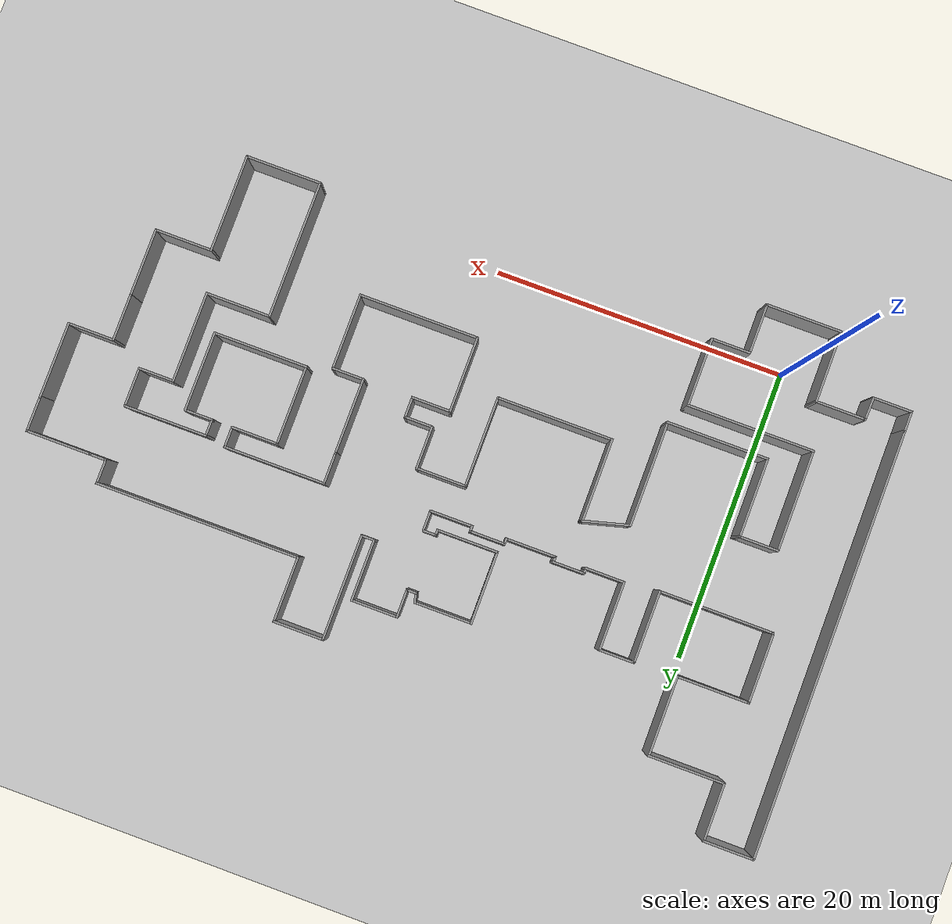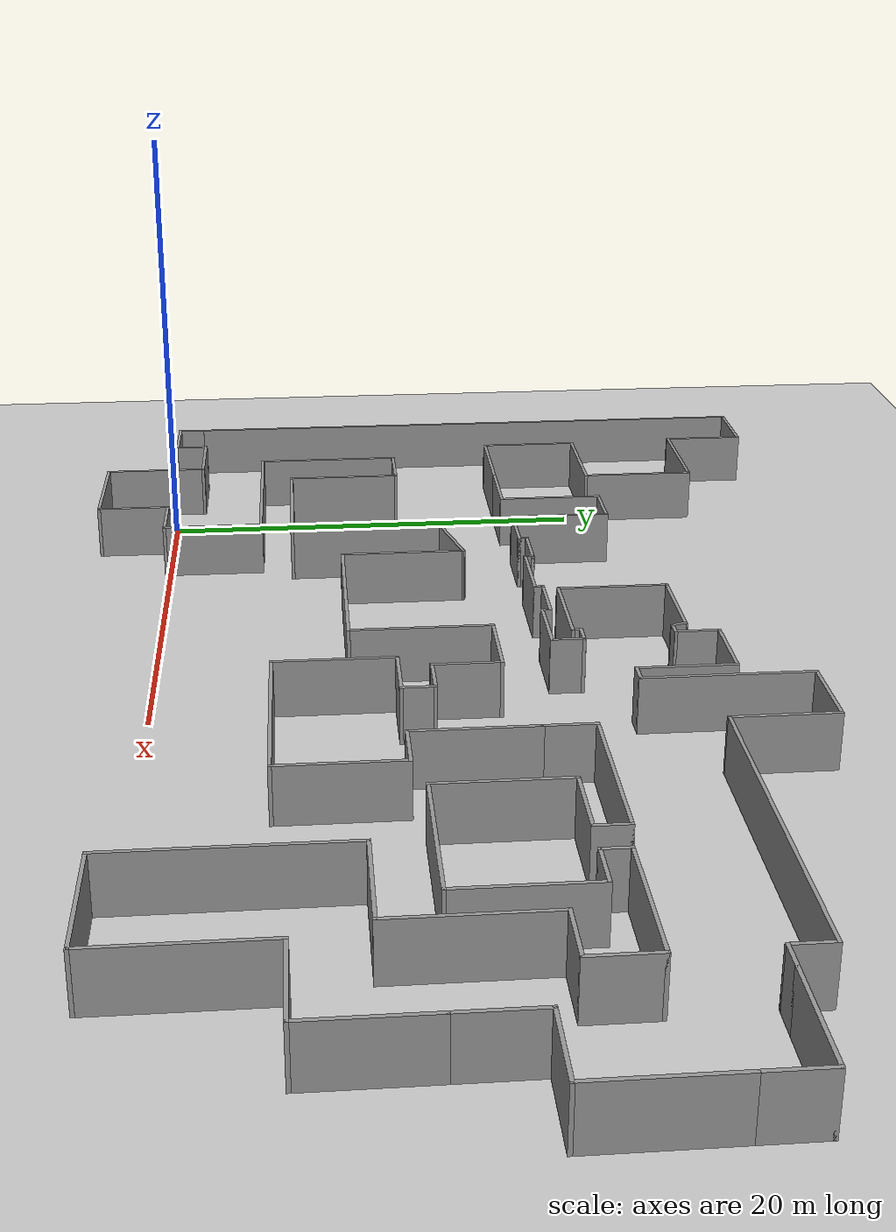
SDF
<sdf version="1.7">
 <world name="default">
  <model name="ground_plane">
   <static>1</static>
   <link name="link">
    <collision name="collision">
     <geometry><plane><normal>0 0 1</normal><size>100 100</size></plane></geometry>
     <surface>
      <contact><collide_bitmask>65535</collide_bitmask></contact>
      <friction><ode><mu>100</mu><mu2>50</mu2></ode></friction>
     </surface>
    </collision>
    <visual name="visual">
     <cast_shadows>0</cast_shadows>
     <geometry><plane><normal>0 0 1</normal><size>100 100</size></plane></geometry>
     <material>
      <script><uri>file://media/materials/scripts/gazebo.material</uri><name>Gazebo/Grey</name></script>
     </material>
    </visual>
   </link>
  </model>
  <model name="more_complex_env_0">
   <pose>18.2819 13.3741 0 0 -0 0</pose>
   <link name="Wall_100">
    <collision name="Wall_100_Collision">
     <geometry><box><size>4.5 0.15 2.5</size></box></geometry>
     <pose>0 0 1.25 0 -0 0</pose>
    </collision>
    <visual name="Wall_100_Visual">
     <pose>0 0 1.25 0 -0 0</pose>
     <geometry><box><size>4.5 0.15 2.5</size></box></geometry>
     <material>
      <script><uri>file://media/materials/scripts/gazebo.material</uri><name>Gazebo/Grey</name></script>
      <ambient>1 1 1 1</ambient>
     </material>
     <meta><layer>0</layer></meta>
    </visual>
    <pose>7.29718 11.1773 0 0 -0 -1.5708</pose>
   </link>
   <link name="Wall_101">
    <collision name="Wall_101_Collision">
     <geometry><box><size>14 0.15 2.5</size></box></geometry>
     <pose>0 0 1.25 0 -0 0</pose>
    </collision>
    <visual name="Wall_101_Visual">
     <pose>0 0 1.25 0 -0 0</pose>
     <geometry><box><size>14 0.15 2.5</size></box></geometry>
     <material>
      <script><uri>file://media/materials/scripts/gazebo.material</uri><name>Gazebo/Grey</name></script>
      <ambient>1 1 1 1</ambient>
     </material>
     <meta><layer>0</layer></meta>
    </visual>
    <pose>14.2222 9.00234 0 0 -0 0</pose>
   </link>
   <link name="Wall_102">
    <collision name="Wall_102_Collision">
     <geometry><box><size>1.75 0.15 2.5</size></box></geometry>
     <pose>0 0 1.25 0 -0 0</pose>
    </collision>
    <visual name="Wall_102_Visual">
     <pose>0 0 1.25 0 -0 0</pose>
     <geometry><box><size>1.75 0.15 2.5</size></box></geometry>
     <material>
      <script><uri>file://media/materials/scripts/gazebo.material</uri><name>Gazebo/Grey</name></script>
      <ambient>1 1 1 1</ambient>
     </material>
     <meta><layer>0</layer></meta>
    </visual>
    <pose>21.1472 8.20234 0 0 -0 -1.5708</pose>
   </link>
   <link name="Wall_103">
    <collision name="Wall_103_Collision">
     <geometry><box><size>1.25 0.15 2.5</size></box></geometry>
     <pose>0 0 1.25 0 -0 0</pose>
    </collision>
    <visual name="Wall_103_Visual">
     <pose>0 0 1.25 0 -0 0</pose>
     <geometry><box><size>1.25 0.15 2.5</size></box></geometry>
     <material>
      <script><uri>file://media/materials/scripts/gazebo.material</uri><name>Gazebo/Grey</name></script>
      <ambient>1 1 1 1</ambient>
     </material>
     <meta><layer>0</layer></meta>
    </visual>
    <pose>21.6972 7.40234 0 0 -0 0</pose>
   </link>
   <link name="Wall_104">
    <collision name="Wall_104_Collision">
     <geometry><box><size>4.5 0.15 2.5</size></box></geometry>
     <pose>0 0 1.25 0 -0 0</pose>
    </collision>
    <visual name="Wall_104_Visual">
     <pose>0 0 1.25 0 -0 0</pose>
     <geometry><box><size>4.5 0.15 2.5</size></box></geometry>
     <material>
      <script><uri>file://media/materials/scripts/gazebo.material</uri><name>Gazebo/Grey</name></script>
      <ambient>1 1 1 1</ambient>
     </material>
     <meta><layer>0</layer></meta>
    </visual>
    <pose>24.4222 7.40234 0 0 -0 0</pose>
   </link>
   <link name="Wall_105">
    <collision name="Wall_105_Collision">
     <geometry><box><size>2.5 0.15 2.5</size></box></geometry>
     <pose>0 0 1.25 0 -0 0</pose>
    </collision>
    <visual name="Wall_105_Visual">
     <pose>0 0 1.25 0 -0 0</pose>
     <geometry><box><size>2.5 0.15 2.5</size></box></geometry>
     <material>
      <script><uri>file://media/materials/scripts/gazebo.material</uri><name>Gazebo/Grey</name></script>
      <ambient>1 1 1 1</ambient>
     </material>
     <meta><layer>0</layer></meta>
    </visual>
    <pose>26.5972 6.22734 0 0 -0 -1.5708</pose>
   </link>
   <link name="Wall_106">
    <collision name="Wall_106_Collision">
     <geometry><box><size>5.25 0.15 2.5</size></box></geometry>
     <pose>0 0 1.25 0 -0 0</pose>
    </collision>
    <visual name="Wall_106_Visual">
     <pose>0 0 1.25 0 -0 0</pose>
     <geometry><box><size>5.25 0.15 2.5</size></box></geometry>
     <material>
      <script><uri>file://media/materials/scripts/gazebo.material</uri><name>Gazebo/Grey</name></script>
      <ambient>1 1 1 1</ambient>
     </material>
     <meta><layer>0</layer></meta>
    </visual>
    <pose>26.5972 2.50234 0 0 -0 -1.5708</pose>
   </link>
   <link name="Wall_107">
    <collision name="Wall_107_Collision">
     <geometry><box><size>3.25 0.15 2.5</size></box></geometry>
     <pose>0 0 1.25 0 -0 0</pose>
    </collision>
    <visual name="Wall_107_Visual">
     <pose>0 0 1.25 0 -0 0</pose>
     <geometry><box><size>3.25 0.15 2.5</size></box></geometry>
     <material>
      <script><uri>file://media/materials/scripts/gazebo.material</uri><name>Gazebo/Grey</name></script>
      <ambient>1 1 1 1</ambient>
     </material>
     <meta><layer>0</layer></meta>
    </visual>
    <pose>25.0472 -0.047661 0 0 -0 3.14159</pose>
   </link>
   <link name="Wall_108">
    <collision name="Wall_108_Collision">
     <geometry><box><size>3.25 0.15 2.5</size></box></geometry>
     <pose>0 0 1.25 0 -0 0</pose>
    </collision>
    <visual name="Wall_108_Visual">
     <pose>0 0 1.25 0 -0 0</pose>
     <geometry><box><size>3.25 0.15 2.5</size></box></geometry>
     <material>
      <script><uri>file://media/materials/scripts/gazebo.material</uri><name>Gazebo/Grey</name></script>
      <ambient>1 1 1 1</ambient>
     </material>
     <meta><layer>0</layer></meta>
    </visual>
    <pose>23.4972 -1.59766 0 0 -0 -1.5708</pose>
   </link>
   <link name="Wall_109">
    <collision name="Wall_109_Collision">
     <geometry><box><size>4.75 0.15 2.5</size></box></geometry>
     <pose>0 0 1.25 0 -0 0</pose>
    </collision>
    <visual name="Wall_109_Visual">
     <pose>0 0 1.25 0 -0 0</pose>
     <geometry><box><size>4.75 0.15 2.5</size></box></geometry>
     <material>
      <script><uri>file://media/materials/scripts/gazebo.material</uri><name>Gazebo/Grey</name></script>
      <ambient>1 1 1 1</ambient>
     </material>
     <meta><layer>0</layer></meta>
    </visual>
    <pose>23.4972 -5.44766 0 0 -0 -1.5708</pose>
   </link>
   <link name="Wall_110">
    <collision name="Wall_110_Collision">
     <geometry><box><size>4 0.15 2.5</size></box></geometry>
     <pose>0 0 1.25 0 -0 0</pose>
    </collision>
    <visual name="Wall_110_Visual">
     <pose>0 0 1.25 0 -0 0</pose>
     <geometry><box><size>4 0.15 2.5</size></box></geometry>
     <material>
      <script><uri>file://media/materials/scripts/gazebo.material</uri><name>Gazebo/Grey</name></script>
      <ambient>1 1 1 1</ambient>
     </material>
     <meta><layer>0</layer></meta>
    </visual>
    <pose>21.5722 -7.74766 0 0 -0 3.14159</pose>
   </link>
   <link name="Wall_111">
    <collision name="Wall_111_Collision">
     <geometry><box><size>6.75 0.15 2.5</size></box></geometry>
     <pose>0 0 1.25 0 -0 0</pose>
    </collision>
    <visual name="Wall_111_Visual">
     <pose>0 0 1.25 0 -0 0</pose>
     <geometry><box><size>6.75 0.15 2.5</size></box></geometry>
     <material>
      <script><uri>file://media/materials/scripts/gazebo.material</uri><name>Gazebo/Grey</name></script>
      <ambient>1 1 1 1</ambient>
     </material>
     <meta><layer>0</layer></meta>
    </visual>
    <pose>19.6472 -11.0477 0 0 -0 -1.5708</pose>
   </link>
   <link name="Wall_112">
    <collision name="Wall_112_Collision">
     <geometry><box><size>5.25 0.15 2.5</size></box></geometry>
     <pose>0 0 1.25 0 -0 0</pose>
    </collision>
    <visual name="Wall_112_Visual">
     <pose>0 0 1.25 0 -0 0</pose>
     <geometry><box><size>5.25 0.15 2.5</size></box></geometry>
     <material>
      <script><uri>file://media/materials/scripts/gazebo.material</uri><name>Gazebo/Grey</name></script>
      <ambient>1 1 1 1</ambient>
     </material>
     <meta><layer>0</layer></meta>
    </visual>
    <pose>17.0972 -14.3477 0 0 -0 3.14159</pose>
   </link>
   <link name="Wall_113">
    <collision name="Wall_113_Collision">
     <geometry><box><size>9.5 0.15 2.5</size></box></geometry>
     <pose>0 0 1.25 0 -0 0</pose>
    </collision>
    <visual name="Wall_113_Visual">
     <pose>0 0 1.25 0 -0 0</pose>
     <geometry><box><size>9.5 0.15 2.5</size></box></geometry>
     <material>
      <script><uri>file://media/materials/scripts/gazebo.material</uri><name>Gazebo/Grey</name></script>
      <ambient>1 1 1 1</ambient>
     </material>
     <meta><layer>0</layer></meta>
    </visual>
    <pose>14.5472 -9.67266 0 0 -0 1.5708</pose>
   </link>
   <link name="Wall_114">
    <collision name="Wall_114_Collision">
     <geometry><box><size>4.5 0.15 2.5</size></box></geometry>
     <pose>0 0 1.25 0 -0 0</pose>
    </collision>
    <visual name="Wall_114_Visual">
     <pose>0 0 1.25 0 -0 0</pose>
     <geometry><box><size>4.5 0.15 2.5</size></box></geometry>
     <material>
      <script><uri>file://media/materials/scripts/gazebo.material</uri><name>Gazebo/Grey</name></script>
      <ambient>1 1 1 1</ambient>
     </material>
     <meta><layer>0</layer></meta>
    </visual>
    <pose>16.7222 -4.99766 0 0 -0 0</pose>
   </link>
   <link name="Wall_115">
    <collision name="Wall_115_Collision">
     <geometry><box><size>6.25 0.15 2.5</size></box></geometry>
     <pose>0 0 1.25 0 -0 0</pose>
    </collision>
    <visual name="Wall_115_Visual">
     <pose>0 0 1.25 0 -0 0</pose>
     <geometry><box><size>6.25 0.15 2.5</size></box></geometry>
     <material>
      <script><uri>file://media/materials/scripts/gazebo.material</uri><name>Gazebo/Grey</name></script>
      <ambient>1 1 1 1</ambient>
     </material>
     <meta><layer>0</layer></meta>
    </visual>
    <pose>18.8972 -1.94766 0 0 -0 1.5708</pose>
   </link>
   <link name="Wall_116">
    <collision name="Wall_116_Collision">
     <geometry><box><size>2.5 0.15 2.5</size></box></geometry>
     <pose>0 0 1.25 0 -0 0</pose>
    </collision>
    <visual name="Wall_116_Visual">
     <pose>0 0 1.25 0 -0 0</pose>
     <geometry><box><size>2.5 0.15 2.5</size></box></geometry>
     <material>
      <script><uri>file://media/materials/scripts/gazebo.material</uri><name>Gazebo/Grey</name></script>
      <ambient>1 1 1 1</ambient>
     </material>
     <meta><layer>0</layer></meta>
    </visual>
    <pose>20.0722 1.10234 0 0 -0 0</pose>
   </link>
   <link name="Wall_117">
    <collision name="Wall_117_Collision">
     <geometry><box><size>2.75 0.15 2.5</size></box></geometry>
     <pose>0 0 1.25 0 -0 0</pose>
    </collision>
    <visual name="Wall_117_Visual">
     <pose>0 0 1.25 0 -0 0</pose>
     <geometry><box><size>2.75 0.15 2.5</size></box></geometry>
     <material>
      <script><uri>file://media/materials/scripts/gazebo.material</uri><name>Gazebo/Grey</name></script>
      <ambient>1 1 1 1</ambient>
     </material>
     <meta><layer>0</layer></meta>
    </visual>
    <pose>21.2472 2.40234 0 0 -0 1.5708</pose>
   </link>
   <link name="Wall_118">
    <collision name="Wall_118_Collision">
     <geometry><box><size>5.75 0.15 2.5</size></box></geometry>
     <pose>0 0 1.25 0 -0 0</pose>
    </collision>
    <visual name="Wall_118_Visual">
     <pose>0 0 1.25 0 -0 0</pose>
     <geometry><box><size>5.75 0.15 2.5</size></box></geometry>
     <material>
      <script><uri>file://media/materials/scripts/gazebo.material</uri><name>Gazebo/Grey</name></script>
      <ambient>1 1 1 1</ambient>
     </material>
     <meta><layer>0</layer></meta>
    </visual>
    <pose>18.4472 3.70234 0 0 -0 3.14159</pose>
   </link>
   <link name="Wall_119">
    <collision name="Wall_119_Collision">
     <geometry><box><size>1.25 0.15 2.5</size></box></geometry>
     <pose>0 0 1.25 0 -0 0</pose>
    </collision>
    <visual name="Wall_119_Visual">
     <pose>0 0 1.25 0 -0 0</pose>
     <geometry><box><size>1.25 0.15 2.5</size></box></geometry>
     <material>
      <script><uri>file://media/materials/scripts/gazebo.material</uri><name>Gazebo/Grey</name></script>
      <ambient>1 1 1 1</ambient>
     </material>
     <meta><layer>0</layer></meta>
    </visual>
    <pose>15.6472 3.15234 0 0 -0 -1.5708</pose>
   </link>
   <link name="Wall_120">
    <collision name="Wall_120_Collision">
     <geometry><box><size>2 0.15 2.5</size></box></geometry>
     <pose>0 0 1.25 0 -0 0</pose>
    </collision>
    <visual name="Wall_120_Visual">
     <pose>0 0 1.25 0 -0 0</pose>
     <geometry><box><size>2 0.15 2.5</size></box></geometry>
     <material>
      <script><uri>file://media/materials/scripts/gazebo.material</uri><name>Gazebo/Grey</name></script>
      <ambient>1 1 1 1</ambient>
     </material>
     <meta><layer>0</layer></meta>
    </visual>
    <pose>16.5722 2.60234 0 0 -0 0</pose>
   </link>
   <link name="Wall_121">
    <collision name="Wall_121_Collision">
     <geometry><box><size>5.5 0.15 2.5</size></box></geometry>
     <pose>0 0 1.25 0 -0 0</pose>
    </collision>
    <visual name="Wall_121_Visual">
     <pose>0 0 1.25 0 -0 0</pose>
     <geometry><box><size>5.5 0.15 2.5</size></box></geometry>
     <material>
      <script><uri>file://media/materials/scripts/gazebo.material</uri><name>Gazebo/Grey</name></script>
      <ambient>1 1 1 1</ambient>
     </material>
     <meta><layer>0</layer></meta>
    </visual>
    <pose>17.4972 -0.072661 0 0 -0 -1.5708</pose>
   </link>
   <link name="Wall_122">
    <collision name="Wall_122_Collision">
     <geometry><box><size>6.5 0.15 2.5</size></box></geometry>
     <pose>0 0 1.25 0 -0 0</pose>
    </collision>
    <visual name="Wall_122_Visual">
     <pose>0 0 1.25 0 -0 0</pose>
     <geometry><box><size>6.5 0.15 2.5</size></box></geometry>
     <material>
      <script><uri>file://media/materials/scripts/gazebo.material</uri><name>Gazebo/Grey</name></script>
      <ambient>1 1 1 1</ambient>
     </material>
     <meta><layer>0</layer></meta>
    </visual>
    <pose>14.3222 -2.74766 0 0 -0 3.14159</pose>
   </link>
   <link name="Wall_123">
    <collision name="Wall_123_Collision">
     <geometry><box><size>5.5 0.15 2.5</size></box></geometry>
     <pose>0 0 1.25 0 -0 0</pose>
    </collision>
    <visual name="Wall_123_Visual">
     <pose>0 0 1.25 0 -0 0</pose>
     <geometry><box><size>5.5 0.15 2.5</size></box></geometry>
     <material>
      <script><uri>file://media/materials/scripts/gazebo.material</uri><name>Gazebo/Grey</name></script>
      <ambient>1 1 1 1</ambient>
     </material>
     <meta><layer>0</layer></meta>
    </visual>
    <pose>11.1472 -0.072661 0 0 -0 1.5708</pose>
   </link>
   <link name="Wall_124">
    <collision name="Wall_124_Collision">
     <geometry><box><size>3.25 0.15 2.5</size></box></geometry>
     <pose>0 0 1.25 0 -0 0</pose>
    </collision>
    <visual name="Wall_124_Visual">
     <pose>0 0 1.25 0 -0 0</pose>
     <geometry><box><size>3.25 0.15 2.5</size></box></geometry>
     <material>
      <script><uri>file://media/materials/scripts/gazebo.material</uri><name>Gazebo/Grey</name></script>
      <ambient>1 1 1 1</ambient>
     </material>
     <meta><layer>0</layer></meta>
    </visual>
    <pose>12.6972 2.60234 0 0 -0 0</pose>
   </link>
   <link name="Wall_125">
    <collision name="Wall_125_Collision">
     <geometry><box><size>1.5 0.15 2.5</size></box></geometry>
     <pose>0 0 1.25 0 -0 0</pose>
    </collision>
    <visual name="Wall_125_Visual">
     <pose>0 0 1.25 0 -0 0</pose>
     <geometry><box><size>1.5 0.15 2.5</size></box></geometry>
     <material>
      <script><uri>file://media/materials/scripts/gazebo.material</uri><name>Gazebo/Grey</name></script>
      <ambient>1 1 1 1</ambient>
     </material>
     <meta><layer>0</layer></meta>
    </visual>
    <pose>14.2472 3.27734 0 0 -0 1.5708</pose>
   </link>
   <link name="Wall_126">
    <collision name="Wall_126_Collision">
     <geometry><box><size>7 0.15 2.5</size></box></geometry>
     <pose>0 0 1.25 0 -0 0</pose>
    </collision>
    <visual name="Wall_126_Visual">
     <pose>0 0 1.25 0 -0 0</pose>
     <geometry><box><size>7 0.15 2.5</size></box></geometry>
     <material>
      <script><uri>file://media/materials/scripts/gazebo.material</uri><name>Gazebo/Grey</name></script>
      <ambient>1 1 1 1</ambient>
     </material>
     <meta><layer>0</layer></meta>
    </visual>
    <pose>10.8222 3.95234 0 0 -0 3.14159</pose>
   </link>
   <link name="Wall_127">
    <collision name="Wall_127_Collision">
     <geometry><box><size>2.25 0.15 2.5</size></box></geometry>
     <pose>0 0 1.25 0 -0 0</pose>
    </collision>
    <visual name="Wall_127_Visual">
     <pose>0 0 1.25 0 -0 0</pose>
     <geometry><box><size>2.25 0.15 2.5</size></box></geometry>
     <material>
      <script><uri>file://media/materials/scripts/gazebo.material</uri><name>Gazebo/Grey</name></script>
      <ambient>1 1 1 1</ambient>
     </material>
     <meta><layer>0</layer></meta>
    </visual>
    <pose>7.39719 2.90234 0 0 -0 -1.5708</pose>
   </link>
   <link name="Wall_128">
    <collision name="Wall_128_Collision">
     <geometry><box><size>5.25 0.15 2.5</size></box></geometry>
     <pose>0 0 1.25 0 -0 0</pose>
    </collision>
    <visual name="Wall_128_Visual">
     <pose>0 0 1.25 0 -0 0</pose>
     <geometry><box><size>5.25 0.15 2.5</size></box></geometry>
     <material>
      <script><uri>file://media/materials/scripts/gazebo.material</uri><name>Gazebo/Grey</name></script>
      <ambient>1 1 1 1</ambient>
     </material>
     <meta><layer>0</layer></meta>
    </visual>
    <pose>7.39719 -0.697661 0 0 -0 -1.5708</pose>
   </link>
   <link name="Wall_129">
    <collision name="Wall_129_Collision">
     <geometry><box><size>2.25 0.15 2.5</size></box></geometry>
     <pose>0 0 1.25 0 -0 0</pose>
    </collision>
    <visual name="Wall_129_Visual">
     <pose>0 0 1.25 0 -0 0</pose>
     <geometry><box><size>2.25 0.15 2.5</size></box></geometry>
     <material>
      <script><uri>file://media/materials/scripts/gazebo.material</uri><name>Gazebo/Grey</name></script>
      <ambient>1 1 1 1</ambient>
     </material>
     <meta><layer>0</layer></meta>
    </visual>
    <pose>8.44718 -3.24766 0 0 -0 0</pose>
   </link>
   <link name="Wall_130">
    <collision name="Wall_130_Collision">
     <geometry><box><size>5.25 0.15 2.5</size></box></geometry>
     <pose>0 0 1.25 0 -0 0</pose>
    </collision>
    <visual name="Wall_130_Visual">
     <pose>0 0 1.25 0 -0 0</pose>
     <geometry><box><size>5.25 0.15 2.5</size></box></geometry>
     <material>
      <script><uri>file://media/materials/scripts/gazebo.material</uri><name>Gazebo/Grey</name></script>
      <ambient>1 1 1 1</ambient>
     </material>
     <meta><layer>0</layer></meta>
    </visual>
    <pose>9.49718 -5.79766 0 0 -0 -1.5708</pose>
   </link>
   <link name="Wall_131">
    <collision name="Wall_131_Collision">
     <geometry><box><size>8.25 0.15 2.5</size></box></geometry>
     <pose>0 0 1.25 0 -0 0</pose>
    </collision>
    <visual name="Wall_131_Visual">
     <pose>0 0 1.25 0 -0 0</pose>
     <geometry><box><size>8.25 0.15 2.5</size></box></geometry>
     <material>
      <script><uri>file://media/materials/scripts/gazebo.material</uri><name>Gazebo/Grey</name></script>
      <ambient>1 1 1 1</ambient>
     </material>
     <meta><layer>0</layer></meta>
    </visual>
    <pose>5.44719 -8.34766 0 0 -0 3.14159</pose>
   </link>
   <link name="Wall_132">
    <collision name="Wall_132_Collision">
     <geometry><box><size>5.25 0.15 2.5</size></box></geometry>
     <pose>0 0 1.25 0 -0 0</pose>
    </collision>
    <visual name="Wall_132_Visual">
     <pose>0 0 1.25 0 -0 0</pose>
     <geometry><box><size>5.25 0.15 2.5</size></box></geometry>
     <material>
      <script><uri>file://media/materials/scripts/gazebo.material</uri><name>Gazebo/Grey</name></script>
      <ambient>1 1 1 1</ambient>
     </material>
     <meta><layer>0</layer></meta>
    </visual>
    <pose>1.39718 -5.79766 0 0 -0 1.5708</pose>
   </link>
   <link name="Wall_133">
    <collision name="Wall_133_Collision">
     <geometry><box><size>2.75 0.15 2.5</size></box></geometry>
     <pose>0 0 1.25 0 -0 0</pose>
    </collision>
    <visual name="Wall_133_Visual">
     <pose>0 0 1.25 0 -0 0</pose>
     <geometry><box><size>2.75 0.15 2.5</size></box></geometry>
     <material>
      <script><uri>file://media/materials/scripts/gazebo.material</uri><name>Gazebo/Grey</name></script>
      <ambient>1 1 1 1</ambient>
     </material>
     <meta><layer>0</layer></meta>
    </visual>
    <pose>2.69719 -3.24766 0 0 -0 0</pose>
   </link>
   <link name="Wall_134">
    <collision name="Wall_134_Collision">
     <geometry><box><size>1.5 0.15 2.5</size></box></geometry>
     <pose>0 0 1.25 0 -0 0</pose>
    </collision>
    <visual name="Wall_134_Visual">
     <pose>0 0 1.25 0 -0 0</pose>
     <geometry><box><size>1.5 0.15 2.5</size></box></geometry>
     <material>
      <script><uri>file://media/materials/scripts/gazebo.material</uri><name>Gazebo/Grey</name></script>
      <ambient>1 1 1 1</ambient>
     </material>
     <meta><layer>0</layer></meta>
    </visual>
    <pose>3.99718 -2.57266 0 0 -0 1.5708</pose>
   </link>
   <link name="Wall_135">
    <collision name="Wall_135_Collision">
     <geometry><box><size>2 0.15 2.5</size></box></geometry>
     <pose>0 0 1.25 0 -0 0</pose>
    </collision>
    <visual name="Wall_135_Visual">
     <pose>0 0 1.25 0 -0 0</pose>
     <geometry><box><size>2 0.15 2.5</size></box></geometry>
     <material>
      <script><uri>file://media/materials/scripts/gazebo.material</uri><name>Gazebo/Grey</name></script>
      <ambient>1 1 1 1</ambient>
     </material>
     <meta><layer>0</layer></meta>
    </visual>
    <pose>3.07219 -1.89766 0 0 -0 3.14159</pose>
   </link>
   <link name="Wall_136">
    <collision name="Wall_136_Collision">
     <geometry><box><size>3 0.15 2.5</size></box></geometry>
     <pose>0 0 1.25 0 -0 0</pose>
    </collision>
    <visual name="Wall_136_Visual">
     <pose>0 0 1.25 0 -0 0</pose>
     <geometry><box><size>3 0.15 2.5</size></box></geometry>
     <material>
      <script><uri>file://media/materials/scripts/gazebo.material</uri><name>Gazebo/Grey</name></script>
      <ambient>1 1 1 1</ambient>
     </material>
     <meta><layer>0</layer></meta>
    </visual>
    <pose>2.14718 -0.472661 0 0 -0 1.5708</pose>
   </link>
   <link name="Wall_137">
    <collision name="Wall_137_Collision">
     <geometry><box><size>3.5 0.15 2.5</size></box></geometry>
     <pose>0 0 1.25 0 -0 0</pose>
    </collision>
    <visual name="Wall_137_Visual">
     <pose>0 0 1.25 0 -0 0</pose>
     <geometry><box><size>3.5 0.15 2.5</size></box></geometry>
     <material>
      <script><uri>file://media/materials/scripts/gazebo.material</uri><name>Gazebo/Grey</name></script>
      <ambient>1 1 1 1</ambient>
     </material>
     <meta><layer>0</layer></meta>
    </visual>
    <pose>0.472185 0.952339 0 0 -0 3.14159</pose>
   </link>
   <link name="Wall_138">
    <collision name="Wall_138_Collision">
     <geometry><box><size>6.25 0.15 2.5</size></box></geometry>
     <pose>0 0 1.25 0 -0 0</pose>
    </collision>
    <visual name="Wall_138_Visual">
     <pose>0 0 1.25 0 -0 0</pose>
     <geometry><box><size>6.25 0.15 2.5</size></box></geometry>
     <material>
      <script><uri>file://media/materials/scripts/gazebo.material</uri><name>Gazebo/Grey</name></script>
      <ambient>1 1 1 1</ambient>
     </material>
     <meta><layer>0</layer></meta>
    </visual>
    <pose>-1.20281 -2.09766 0 0 -0 -1.5708</pose>
   </link>
   <link name="Wall_139">
    <collision name="Wall_139_Collision">
     <geometry><box><size>8 0.15 2.5</size></box></geometry>
     <pose>0 0 1.25 0 -0 0</pose>
    </collision>
    <visual name="Wall_139_Visual">
     <pose>0 0 1.25 0 -0 0</pose>
     <geometry><box><size>8 0.15 2.5</size></box></geometry>
     <material>
      <script><uri>file://media/materials/scripts/gazebo.material</uri><name>Gazebo/Grey</name></script>
      <ambient>1 1 1 1</ambient>
     </material>
     <meta><layer>0</layer></meta>
    </visual>
    <pose>-5.12782 -5.14766 0 0 -0 3.14159</pose>
   </link>
   <link name="Wall_140">
    <collision name="Wall_140_Collision">
     <geometry><box><size>5.75 0.15 2.5</size></box></geometry>
     <pose>0 0 1.25 0 -0 0</pose>
    </collision>
    <visual name="Wall_140_Visual">
     <pose>0 0 1.25 0 -0 0</pose>
     <geometry><box><size>5.75 0.15 2.5</size></box></geometry>
     <material>
      <script><uri>file://media/materials/scripts/gazebo.material</uri><name>Gazebo/Grey</name></script>
      <ambient>1 1 1 1</ambient>
     </material>
     <meta><layer>0</layer></meta>
    </visual>
    <pose>-9.05281 -2.34766 0 0 -0 1.5708</pose>
   </link>
   <link name="Wall_141">
    <collision name="Wall_141_Collision">
     <geometry><box><size>3.25 0.15 2.5</size></box></geometry>
     <pose>0 0 1.25 0 -0 0</pose>
    </collision>
    <visual name="Wall_141_Visual">
     <pose>0 0 1.25 0 -0 0</pose>
     <geometry><box><size>3.25 0.15 2.5</size></box></geometry>
     <material>
      <script><uri>file://media/materials/scripts/gazebo.material</uri><name>Gazebo/Grey</name></script>
      <ambient>1 1 1 1</ambient>
     </material>
     <meta><layer>0</layer></meta>
    </visual>
    <pose>-10.55 0.051169 0 0 -0 -2.87979</pose>
   </link>
   <link name="Wall_142">
    <collision name="Wall_142_Collision">
     <geometry><box><size>7.25 0.15 2.5</size></box></geometry>
     <pose>0 0 1.25 0 -0 0</pose>
    </collision>
    <visual name="Wall_142_Visual">
     <pose>0 0 1.25 0 -0 0</pose>
     <geometry><box><size>7.25 0.15 2.5</size></box></geometry>
     <material>
      <script><uri>file://media/materials/scripts/gazebo.material</uri><name>Gazebo/Grey</name></script>
      <ambient>1 1 1 1</ambient>
     </material>
     <meta><layer>0</layer></meta>
    </visual>
    <pose>-12.0472 -3.9 0 0 -0 -1.5708</pose>
   </link>
   <link name="Wall_143">
    <collision name="Wall_143_Collision">
     <geometry><box><size>7 0.15 2.5</size></box></geometry>
     <pose>0 0 1.25 0 -0 0</pose>
    </collision>
    <visual name="Wall_143_Visual">
     <pose>0 0 1.25 0 -0 0</pose>
     <geometry><box><size>7 0.15 2.5</size></box></geometry>
     <material>
      <script><uri>file://media/materials/scripts/gazebo.material</uri><name>Gazebo/Grey</name></script>
      <ambient>1 1 1 1</ambient>
     </material>
     <meta><layer>0</layer></meta>
    </visual>
    <pose>-15.4722 -7.45 0 0 -0 3.14159</pose>
   </link>
   <link name="Wall_144">
    <collision name="Wall_144_Collision">
     <geometry><box><size>5.5 0.15 2.5</size></box></geometry>
     <pose>0 0 1.25 0 -0 0</pose>
    </collision>
    <visual name="Wall_144_Visual">
     <pose>0 0 1.25 0 -0 0</pose>
     <geometry><box><size>5.5 0.15 2.5</size></box></geometry>
     <material>
      <script><uri>file://media/materials/scripts/gazebo.material</uri><name>Gazebo/Grey</name></script>
      <ambient>1 1 1 1</ambient>
     </material>
     <meta><layer>0</layer></meta>
    </visual>
    <pose>-18.8972 -4.775 0 0 -0 1.5708</pose>
   </link>
   <link name="Wall_145">
    <collision name="Wall_145_Collision">
     <geometry><box><size>2.75 0.15 2.5</size></box></geometry>
     <pose>0 0 1.25 0 -0 0</pose>
    </collision>
    <visual name="Wall_145_Visual">
     <pose>0 0 1.25 0 -0 0</pose>
     <geometry><box><size>2.75 0.15 2.5</size></box></geometry>
     <material>
      <script><uri>file://media/materials/scripts/gazebo.material</uri><name>Gazebo/Grey</name></script>
      <ambient>1 1 1 1</ambient>
     </material>
     <meta><layer>0</layer></meta>
    </visual>
    <pose>-20.1972 -2.1 0 0 -0 3.14159</pose>
   </link>
   <link name="Wall_148">
    <collision name="Wall_148_Collision">
     <geometry><box><size>29.25 0.15 2.5</size></box></geometry>
     <pose>0 0 1.25 0 -0 0</pose>
    </collision>
    <visual name="Wall_148_Visual">
     <pose>0 0 1.25 0 -0 0</pose>
     <geometry><box><size>29.25 0.15 2.5</size></box></geometry>
     <material>
      <script><uri>file://media/materials/scripts/gazebo.material</uri><name>Gazebo/Grey</name></script>
      <ambient>1 1 1 1</ambient>
     </material>
     <meta><layer>0</layer></meta>
    </visual>
    <pose>-26.5972 2.35 0 0 -0 1.5708</pose>
   </link>
   <link name="Wall_149">
    <collision name="Wall_149_Collision">
     <geometry><box><size>3.5 0.15 2.5</size></box></geometry>
     <pose>0 0 1.25 0 -0 0</pose>
    </collision>
    <visual name="Wall_149_Visual">
     <pose>0 0 1.25 0 -0 0</pose>
     <geometry><box><size>3.5 0.15 2.5</size></box></geometry>
     <material>
      <script><uri>file://media/materials/scripts/gazebo.material</uri><name>Gazebo/Grey</name></script>
      <ambient>1 1 1 1</ambient>
     </material>
     <meta><layer>0</layer></meta>
    </visual>
    <pose>-24.9222 16.9 0 0 -0 0</pose>
   </link>
   <link name="Wall_150">
    <collision name="Wall_150_Collision">
     <geometry><box><size>4 0.15 2.5</size></box></geometry>
     <pose>0 0 1.25 0 -0 0</pose>
    </collision>
    <visual name="Wall_150_Visual">
     <pose>0 0 1.25 0 -0 0</pose>
     <geometry><box><size>4 0.15 2.5</size></box></geometry>
     <material>
      <script><uri>file://media/materials/scripts/gazebo.material</uri><name>Gazebo/Grey</name></script>
      <ambient>1 1 1 1</ambient>
     </material>
     <meta><layer>0</layer></meta>
    </visual>
    <pose>-23.2472 14.975 0 0 -0 -1.5708</pose>
   </link>
   <link name="Wall_151">
    <collision name="Wall_151_Collision">
     <geometry><box><size>5.25 0.15 2.5</size></box></geometry>
     <pose>0 0 1.25 0 -0 0</pose>
    </collision>
    <visual name="Wall_151_Visual">
     <pose>0 0 1.25 0 -0 0</pose>
     <geometry><box><size>5.25 0.15 2.5</size></box></geometry>
     <material>
      <script><uri>file://media/materials/scripts/gazebo.material</uri><name>Gazebo/Grey</name></script>
      <ambient>1 1 1 1</ambient>
     </material>
     <meta><layer>0</layer></meta>
    </visual>
    <pose>-20.6972 13.05 0 0 -0 0</pose>
   </link>
   <link name="Wall_152">
    <collision name="Wall_152_Collision">
     <geometry><box><size>5.5 0.15 2.5</size></box></geometry>
     <pose>0 0 1.25 0 -0 0</pose>
    </collision>
    <visual name="Wall_152_Visual">
     <pose>0 0 1.25 0 -0 0</pose>
     <geometry><box><size>5.5 0.15 2.5</size></box></geometry>
     <material>
      <script><uri>file://media/materials/scripts/gazebo.material</uri><name>Gazebo/Grey</name></script>
      <ambient>1 1 1 1</ambient>
     </material>
     <meta><layer>0</layer></meta>
    </visual>
    <pose>-18.1472 10.375 0 0 -0 -1.5708</pose>
   </link>
   <link name="Wall_153">
    <collision name="Wall_153_Collision">
     <geometry><box><size>5 0.15 2.5</size></box></geometry>
     <pose>0 0 1.25 0 -0 0</pose>
    </collision>
    <visual name="Wall_153_Visual">
     <pose>0 0 1.25 0 -0 0</pose>
     <geometry><box><size>5 0.15 2.5</size></box></geometry>
     <material>
      <script><uri>file://media/materials/scripts/gazebo.material</uri><name>Gazebo/Grey</name></script>
      <ambient>1 1 1 1</ambient>
     </material>
     <meta><layer>0</layer></meta>
    </visual>
    <pose>-20.5722 7.7 0 0 -0 3.14159</pose>
   </link>
   <link name="Wall_154">
    <collision name="Wall_154_Collision">
     <geometry><box><size>4.75 0.15 2.5</size></box></geometry>
     <pose>0 0 1.25 0 -0 0</pose>
    </collision>
    <visual name="Wall_154_Visual">
     <pose>0 0 1.25 0 -0 0</pose>
     <geometry><box><size>4.75 0.15 2.5</size></box></geometry>
     <material>
      <script><uri>file://media/materials/scripts/gazebo.material</uri><name>Gazebo/Grey</name></script>
      <ambient>1 1 1 1</ambient>
     </material>
     <meta><layer>0</layer></meta>
    </visual>
    <pose>-22.9972 5.4 0 0 -0 -1.5708</pose>
   </link>
   <link name="Wall_157">
    <collision name="Wall_157_Collision">
     <geometry><box><size>4.5 0.15 2.5</size></box></geometry>
     <pose>0 0 1.25 0 -0 0</pose>
    </collision>
    <visual name="Wall_157_Visual">
     <pose>0 0 1.25 0 -0 0</pose>
     <geometry><box><size>4.5 0.15 2.5</size></box></geometry>
     <material>
      <script><uri>file://media/materials/scripts/gazebo.material</uri><name>Gazebo/Grey</name></script>
      <ambient>1 1 1 1</ambient>
     </material>
     <meta><layer>0</layer></meta>
    </visual>
    <pose>-20.7831 2.98189 0 0 -0 3.14159</pose>
   </link>
   <link name="Wall_158">
    <collision name="Wall_158_Collision">
     <geometry><box><size>0.15 0.15 2.5</size></box></geometry>
     <pose>0 0 1.25 0 -0 0</pose>
    </collision>
    <visual name="Wall_158_Visual">
     <pose>0 0 1.25 0 -0 0</pose>
     <geometry><box><size>0.15 0.15 2.5</size></box></geometry>
     <material>
      <script><uri>file://media/materials/scripts/gazebo.material</uri><name>Gazebo/Grey</name></script>
      <ambient>1 1 1 1</ambient>
     </material>
     <meta><layer>0</layer></meta>
    </visual>
    <pose>-22.9581 2.98189 0 0 -0 0</pose>
   </link>
   <link name="Wall_160">
    <collision name="Wall_160_Collision">
     <geometry><box><size>7 0.15 2.5</size></box></geometry>
     <pose>0 0 1.25 0 -0 0</pose>
    </collision>
    <visual name="Wall_160_Visual">
     <pose>0 0 1.25 0 -0 0</pose>
     <geometry><box><size>7 0.15 2.5</size></box></geometry>
     <material>
      <script><uri>file://media/materials/scripts/gazebo.material</uri><name>Gazebo/Grey</name></script>
      <ambient>1 1 1 1</ambient>
     </material>
     <meta><layer>0</layer></meta>
    </visual>
    <pose>-21.4972 -5.525 0 0 -0 -1.5708</pose>
   </link>
   <link name="Wall_161">
    <collision name="Wall_161_Collision">
     <geometry><box><size>8.75 0.15 2.5</size></box></geometry>
     <pose>0 0 1.25 0 -0 0</pose>
    </collision>
    <visual name="Wall_161_Visual">
     <pose>0 0 1.25 0 -0 0</pose>
     <geometry><box><size>8.75 0.15 2.5</size></box></geometry>
     <material>
      <script><uri>file://media/materials/scripts/gazebo.material</uri><name>Gazebo/Grey</name></script>
      <ambient>1 1 1 1</ambient>
     </material>
     <meta><layer>0</layer></meta>
    </visual>
    <pose>-17.1972 -8.95 0 0 -0 0</pose>
   </link>
   <link name="Wall_162">
    <collision name="Wall_162_Collision">
     <geometry><box><size>4.75 0.15 2.5</size></box></geometry>
     <pose>0 0 1.25 0 -0 0</pose>
    </collision>
    <visual name="Wall_162_Visual">
     <pose>0 0 1.25 0 -0 0</pose>
     <geometry><box><size>4.75 0.15 2.5</size></box></geometry>
     <material>
      <script><uri>file://media/materials/scripts/gazebo.material</uri><name>Gazebo/Grey</name></script>
      <ambient>1 1 1 1</ambient>
     </material>
     <meta><layer>0</layer></meta>
    </visual>
    <pose>-12.8972 -11.25 0 0 -0 -1.5708</pose>
   </link>
   <link name="Wall_163">
    <collision name="Wall_163_Collision">
     <geometry><box><size>2.75 0.15 2.5</size></box></geometry>
     <pose>0 0 1.25 0 -0 0</pose>
    </collision>
    <visual name="Wall_163_Visual">
     <pose>0 0 1.25 0 -0 0</pose>
     <geometry><box><size>2.75 0.15 2.5</size></box></geometry>
     <material>
      <script><uri>file://media/materials/scripts/gazebo.material</uri><name>Gazebo/Grey</name></script>
      <ambient>1 1 1 1</ambient>
     </material>
     <meta><layer>0</layer></meta>
    </visual>
    <pose>-14.1972 -13.55 0 0 -0 3.14159</pose>
   </link>
   <link name="Wall_164">
    <collision name="Wall_164_Collision">
     <geometry><box><size>3.5 0.15 2.5</size></box></geometry>
     <pose>0 0 1.25 0 -0 0</pose>
    </collision>
    <visual name="Wall_164_Visual">
     <pose>0 0 1.25 0 -0 0</pose>
     <geometry><box><size>3.5 0.15 2.5</size></box></geometry>
     <material>
      <script><uri>file://media/materials/scripts/gazebo.material</uri><name>Gazebo/Grey</name></script>
      <ambient>1 1 1 1</ambient>
     </material>
     <meta><layer>0</layer></meta>
    </visual>
    <pose>-15.4972 -15.225 0 0 -0 -1.5708</pose>
   </link>
   <link name="Wall_165">
    <collision name="Wall_165_Collision">
     <geometry><box><size>5.25 0.15 2.5</size></box></geometry>
     <pose>0 0 1.25 0 -0 0</pose>
    </collision>
    <visual name="Wall_165_Visual">
     <pose>0 0 1.25 0 -0 0</pose>
     <geometry><box><size>5.25 0.15 2.5</size></box></geometry>
     <material>
      <script><uri>file://media/materials/scripts/gazebo.material</uri><name>Gazebo/Grey</name></script>
      <ambient>1 1 1 1</ambient>
     </material>
     <meta><layer>0</layer></meta>
    </visual>
    <pose>-18.0472 -16.9 0 0 -0 3.14159</pose>
   </link>
   <link name="Wall_166">
    <collision name="Wall_166_Collision">
     <geometry><box><size>5 0.15 2.5</size></box></geometry>
     <pose>0 0 1.25 0 -0 0</pose>
    </collision>
    <visual name="Wall_166_Visual">
     <pose>0 0 1.25 0 -0 0</pose>
     <geometry><box><size>5 0.15 2.5</size></box></geometry>
     <material>
      <script><uri>file://media/materials/scripts/gazebo.material</uri><name>Gazebo/Grey</name></script>
      <ambient>1 1 1 1</ambient>
     </material>
     <meta><layer>0</layer></meta>
    </visual>
    <pose>-20.5972 -14.475 0 0 -0 1.5708</pose>
   </link>
   <link name="Wall_167">
    <collision name="Wall_167_Collision">
     <geometry><box><size>3.5 0.15 2.5</size></box></geometry>
     <pose>0 0 1.25 0 -0 0</pose>
    </collision>
    <visual name="Wall_167_Visual">
     <pose>0 0 1.25 0 -0 0</pose>
     <geometry><box><size>3.5 0.15 2.5</size></box></geometry>
     <material>
      <script><uri>file://media/materials/scripts/gazebo.material</uri><name>Gazebo/Grey</name></script>
      <ambient>1 1 1 1</ambient>
     </material>
     <meta><layer>0</layer></meta>
    </visual>
    <pose>-22.2722 -12.05 0 0 -0 3.14159</pose>
   </link>
   <link name="Wall_172">
    <collision name="Wall_172_Collision">
     <geometry><box><size>1.5 0.15 2.5</size></box></geometry>
     <pose>0 0 1.25 0 -0 0</pose>
    </collision>
    <visual name="Wall_172_Visual">
     <pose>0 0 1.25 0 -0 0</pose>
     <geometry><box><size>1.5 0.15 2.5</size></box></geometry>
     <material>
      <script><uri>file://media/materials/scripts/gazebo.material</uri><name>Gazebo/Grey</name></script>
      <ambient>1 1 1 1</ambient>
     </material>
     <meta><layer>0</layer></meta>
    </visual>
    <pose>-26.5972 -12.875 0 0 -0 -1.5708</pose>
   </link>
   <link name="Wall_173">
    <collision name="Wall_173_Collision">
     <geometry><box><size>2.75 0.15 2.5</size></box></geometry>
     <pose>0 0 1.25 0 -0 0</pose>
    </collision>
    <visual name="Wall_173_Visual">
     <pose>0 0 1.25 0 -0 0</pose>
     <geometry><box><size>2.75 0.15 2.5</size></box></geometry>
     <material>
      <script><uri>file://media/materials/scripts/gazebo.material</uri><name>Gazebo/Grey</name></script>
      <ambient>1 1 1 1</ambient>
     </material>
     <meta><layer>0</layer></meta>
    </visual>
    <pose>-25.2972 -13.55 0 0 -0 0</pose>
   </link>
   <link name="Wall_177">
    <collision name="Wall_177_Collision">
     <geometry><box><size>1.65083 0.15 2.5</size></box></geometry>
     <pose>0 0 1.25 0 -0 0</pose>
    </collision>
    <visual name="Wall_177_Visual">
     <pose>0 0 1.25 0 -0 0</pose>
     <geometry><box><size>1.65083 0.15 2.5</size></box></geometry>
     <material>
      <script><uri>file://media/materials/scripts/gazebo.material</uri><name>Gazebo/Grey</name></script>
      <ambient>1 1 1 1</ambient>
     </material>
     <meta><layer>0</layer></meta>
    </visual>
    <pose>-23.9722 -12.8 0 0 -0 -1.60412</pose>
   </link>
   <link name="Wall_73">
    <collision name="Wall_73_Collision">
     <geometry><box><size>3.5 0.15 2.5</size></box></geometry>
     <pose>0 0 1.25 0 -0 0</pose>
    </collision>
    <visual name="Wall_73_Visual">
     <pose>0 0 1.25 0 -0 0</pose>
     <geometry><box><size>3.5 0.15 2.5</size></box></geometry>
     <material>
      <script><uri>file://media/materials/scripts/gazebo.material</uri><name>Gazebo/Grey</name></script>
      <ambient>1 1 1 1</ambient>
     </material>
     <meta><layer>0</layer></meta>
    </visual>
    <pose>-16.9331 2.98189 0 0 -0 0</pose>
   </link>
   <link name="Wall_74">
    <collision name="Wall_74_Collision">
     <geometry><box><size>5 0.15 2.5</size></box></geometry>
     <pose>0 0 1.25 0 -0 0</pose>
    </collision>
    <visual name="Wall_74_Visual">
     <pose>0 0 1.25 0 -0 0</pose>
     <geometry><box><size>5 0.15 2.5</size></box></geometry>
     <material>
      <script><uri>file://media/materials/scripts/gazebo.material</uri><name>Gazebo/Grey</name></script>
      <ambient>1 1 1 1</ambient>
     </material>
     <meta><layer>0</layer></meta>
    </visual>
    <pose>-15.2581 5.40689 0 0 -0 1.5708</pose>
   </link>
   <link name="Wall_75">
    <collision name="Wall_75_Collision">
     <geometry><box><size>2.5 0.15 2.5</size></box></geometry>
     <pose>0 0 1.25 0 -0 0</pose>
    </collision>
    <visual name="Wall_75_Visual">
     <pose>0 0 1.25 0 -0 0</pose>
     <geometry><box><size>2.5 0.15 2.5</size></box></geometry>
     <material>
      <script><uri>file://media/materials/scripts/gazebo.material</uri><name>Gazebo/Grey</name></script>
      <ambient>1 1 1 1</ambient>
     </material>
     <meta><layer>0</layer></meta>
    </visual>
    <pose>-14.0831 7.83189 0 0 -0 0</pose>
   </link>
   <link name="Wall_76">
    <collision name="Wall_76_Collision">
     <geometry><box><size>4.75 0.15 2.5</size></box></geometry>
     <pose>0 0 1.25 0 -0 0</pose>
    </collision>
    <visual name="Wall_76_Visual">
     <pose>0 0 1.25 0 -0 0</pose>
     <geometry><box><size>4.75 0.15 2.5</size></box></geometry>
     <material>
      <script><uri>file://media/materials/scripts/gazebo.material</uri><name>Gazebo/Grey</name></script>
      <ambient>1 1 1 1</ambient>
     </material>
     <meta><layer>0</layer></meta>
    </visual>
    <pose>-12.9081 5.53189 0 0 -0 -1.5708</pose>
   </link>
   <link name="Wall_77">
    <collision name="Wall_77_Collision">
     <geometry><box><size>2.75 0.15 2.5</size></box></geometry>
     <pose>0 0 1.25 0 -0 0</pose>
    </collision>
    <visual name="Wall_77_Visual">
     <pose>0 0 1.25 0 -0 0</pose>
     <geometry><box><size>2.75 0.15 2.5</size></box></geometry>
     <material>
      <script><uri>file://media/materials/scripts/gazebo.material</uri><name>Gazebo/Grey</name></script>
      <ambient>1 1 1 1</ambient>
     </material>
     <meta><layer>0</layer></meta>
    </visual>
    <pose>-11.6081 3.23189 0 0 -0 0</pose>
   </link>
   <link name="Wall_78">
    <collision name="Wall_78_Collision">
     <geometry><box><size>0.5 0.15 2.5</size></box></geometry>
     <pose>0 0 1.25 0 -0 0</pose>
    </collision>
    <visual name="Wall_78_Visual">
     <pose>0 0 1.25 0 -0 0</pose>
     <geometry><box><size>0.5 0.15 2.5</size></box></geometry>
     <material>
      <script><uri>file://media/materials/scripts/gazebo.material</uri><name>Gazebo/Grey</name></script>
      <ambient>1 1 1 1</ambient>
     </material>
     <meta><layer>0</layer></meta>
    </visual>
    <pose>-10.3081 3.40689 0 0 -0 1.5708</pose>
   </link>
   <link name="Wall_79">
    <collision name="Wall_79_Collision">
     <geometry><box><size>2.25 0.15 2.5</size></box></geometry>
     <pose>0 0 1.25 0 -0 0</pose>
    </collision>
    <visual name="Wall_79_Visual">
     <pose>0 0 1.25 0 -0 0</pose>
     <geometry><box><size>2.25 0.15 2.5</size></box></geometry>
     <material>
      <script><uri>file://media/materials/scripts/gazebo.material</uri><name>Gazebo/Grey</name></script>
      <ambient>1 1 1 1</ambient>
     </material>
     <meta><layer>0</layer></meta>
    </visual>
    <pose>-9.25811 3.58189 0 0 -0 0</pose>
   </link>
   <link name="Wall_80">
    <collision name="Wall_80_Collision">
     <geometry><box><size>0.5 0.15 2.5</size></box></geometry>
     <pose>0 0 1.25 0 -0 0</pose>
    </collision>
    <visual name="Wall_80_Visual">
     <pose>0 0 1.25 0 -0 0</pose>
     <geometry><box><size>0.5 0.15 2.5</size></box></geometry>
     <material>
      <script><uri>file://media/materials/scripts/gazebo.material</uri><name>Gazebo/Grey</name></script>
      <ambient>1 1 1 1</ambient>
     </material>
     <meta><layer>0</layer></meta>
    </visual>
    <pose>-8.20811 3.40689 0 0 -0 -1.5708</pose>
   </link>
   <link name="Wall_81">
    <collision name="Wall_81_Collision">
     <geometry><box><size>3.5 0.15 2.5</size></box></geometry>
     <pose>0 0 1.25 0 -0 0</pose>
    </collision>
    <visual name="Wall_81_Visual">
     <pose>0 0 1.25 0 -0 0</pose>
     <geometry><box><size>3.5 0.15 2.5</size></box></geometry>
     <material>
      <script><uri>file://media/materials/scripts/gazebo.material</uri><name>Gazebo/Grey</name></script>
      <ambient>1 1 1 1</ambient>
     </material>
     <meta><layer>0</layer></meta>
    </visual>
    <pose>-6.53311 3.23189 0 0 -0 0</pose>
   </link>
   <link name="Wall_82">
    <collision name="Wall_82_Collision">
     <geometry><box><size>0.5 0.15 2.5</size></box></geometry>
     <pose>0 0 1.25 0 -0 0</pose>
    </collision>
    <visual name="Wall_82_Visual">
     <pose>0 0 1.25 0 -0 0</pose>
     <geometry><box><size>0.5 0.15 2.5</size></box></geometry>
     <material>
      <script><uri>file://media/materials/scripts/gazebo.material</uri><name>Gazebo/Grey</name></script>
      <ambient>1 1 1 1</ambient>
     </material>
     <meta><layer>0</layer></meta>
    </visual>
    <pose>-4.85811 3.40689 0 0 -0 1.5708</pose>
   </link>
   <link name="Wall_83">
    <collision name="Wall_83_Collision">
     <geometry><box><size>2.5 0.15 2.5</size></box></geometry>
     <pose>0 0 1.25 0 -0 0</pose>
    </collision>
    <visual name="Wall_83_Visual">
     <pose>0 0 1.25 0 -0 0</pose>
     <geometry><box><size>2.5 0.15 2.5</size></box></geometry>
     <material>
      <script><uri>file://media/materials/scripts/gazebo.material</uri><name>Gazebo/Grey</name></script>
      <ambient>1 1 1 1</ambient>
     </material>
     <meta><layer>0</layer></meta>
    </visual>
    <pose>-3.68311 3.58189 0 0 -0 0</pose>
   </link>
   <link name="Wall_84">
    <collision name="Wall_84_Collision">
     <geometry><box><size>0.5 0.15 2.5</size></box></geometry>
     <pose>0 0 1.25 0 -0 0</pose>
    </collision>
    <visual name="Wall_84_Visual">
     <pose>0 0 1.25 0 -0 0</pose>
     <geometry><box><size>0.5 0.15 2.5</size></box></geometry>
     <material>
      <script><uri>file://media/materials/scripts/gazebo.material</uri><name>Gazebo/Grey</name></script>
      <ambient>1 1 1 1</ambient>
     </material>
     <meta><layer>0</layer></meta>
    </visual>
    <pose>-2.50811 3.40689 0 0 -0 -1.5708</pose>
   </link>
   <link name="Wall_85">
    <collision name="Wall_85_Collision">
     <geometry><box><size>3 0.15 2.5</size></box></geometry>
     <pose>0 0 1.25 0 -0 0</pose>
    </collision>
    <visual name="Wall_85_Visual">
     <pose>0 0 1.25 0 -0 0</pose>
     <geometry><box><size>3 0.15 2.5</size></box></geometry>
     <material>
      <script><uri>file://media/materials/scripts/gazebo.material</uri><name>Gazebo/Grey</name></script>
      <ambient>1 1 1 1</ambient>
     </material>
     <meta><layer>0</layer></meta>
    </visual>
    <pose>-1.08311 3.23189 0 0 -0 0</pose>
   </link>
   <link name="Wall_86">
    <collision name="Wall_86_Collision">
     <geometry><box><size>1.5 0.15 2.5</size></box></geometry>
     <pose>0 0 1.25 0 -0 0</pose>
    </collision>
    <visual name="Wall_86_Visual">
     <pose>0 0 1.25 0 -0 0</pose>
     <geometry><box><size>1.5 0.15 2.5</size></box></geometry>
     <material>
      <script><uri>file://media/materials/scripts/gazebo.material</uri><name>Gazebo/Grey</name></script>
      <ambient>1 1 1 1</ambient>
     </material>
     <meta><layer>0</layer></meta>
    </visual>
    <pose>0.341894 3.90689 0 0 -0 1.5708</pose>
   </link>
   <link name="Wall_87">
    <collision name="Wall_87_Collision">
     <geometry><box><size>1 0.15 2.5</size></box></geometry>
     <pose>0 0 1.25 0 -0 0</pose>
    </collision>
    <visual name="Wall_87_Visual">
     <pose>0 0 1.25 0 -0 0</pose>
     <geometry><box><size>1 0.15 2.5</size></box></geometry>
     <material>
      <script><uri>file://media/materials/scripts/gazebo.material</uri><name>Gazebo/Grey</name></script>
      <ambient>1 1 1 1</ambient>
     </material>
     <meta><layer>0</layer></meta>
    </visual>
    <pose>-0.083106 4.58189 0 0 -0 3.14159</pose>
   </link>
   <link name="Wall_88">
    <collision name="Wall_88_Collision">
     <geometry><box><size>0.5 0.15 2.5</size></box></geometry>
     <pose>0 0 1.25 0 -0 0</pose>
    </collision>
    <visual name="Wall_88_Visual">
     <pose>0 0 1.25 0 -0 0</pose>
     <geometry><box><size>0.5 0.15 2.5</size></box></geometry>
     <material>
      <script><uri>file://media/materials/scripts/gazebo.material</uri><name>Gazebo/Grey</name></script>
      <ambient>1 1 1 1</ambient>
     </material>
     <meta><layer>0</layer></meta>
    </visual>
    <pose>-0.508106 4.40689 0 0 -0 -1.5708</pose>
   </link>
   <link name="Wall_89">
    <collision name="Wall_89_Collision">
     <geometry><box><size>4.25 0.15 2.5</size></box></geometry>
     <pose>0 0 1.25 0 -0 0</pose>
    </collision>
    <visual name="Wall_89_Visual">
     <pose>0 0 1.25 0 -0 0</pose>
     <geometry><box><size>4.25 0.15 2.5</size></box></geometry>
     <material>
      <script><uri>file://media/materials/scripts/gazebo.material</uri><name>Gazebo/Grey</name></script>
      <ambient>1 1 1 1</ambient>
     </material>
     <meta><layer>0</layer></meta>
    </visual>
    <pose>-2.55811 4.23189 0 0 -0 3.14159</pose>
   </link>
   <link name="Wall_90">
    <collision name="Wall_90_Collision">
     <geometry><box><size>5 0.15 2.5</size></box></geometry>
     <pose>0 0 1.25 0 -0 0</pose>
    </collision>
    <visual name="Wall_90_Visual">
     <pose>0 0 1.25 0 -0 0</pose>
     <geometry><box><size>5 0.15 2.5</size></box></geometry>
     <material>
      <script><uri>file://media/materials/scripts/gazebo.material</uri><name>Gazebo/Grey</name></script>
      <ambient>1 1 1 1</ambient>
     </material>
     <meta><layer>0</layer></meta>
    </visual>
    <pose>-4.60811 6.65689 0 0 -0 1.5708</pose>
   </link>
   <link name="Wall_91">
    <collision name="Wall_91_Collision">
     <geometry><box><size>4 0.15 2.5</size></box></geometry>
     <pose>0 0 1.25 0 -0 0</pose>
    </collision>
    <visual name="Wall_91_Visual">
     <pose>0 0 1.25 0 -0 0</pose>
     <geometry><box><size>4 0.15 2.5</size></box></geometry>
     <material>
      <script><uri>file://media/materials/scripts/gazebo.material</uri><name>Gazebo/Grey</name></script>
      <ambient>1 1 1 1</ambient>
     </material>
     <meta><layer>0</layer></meta>
    </visual>
    <pose>-2.68311 9.08189 0 0 -0 0</pose>
   </link>
   <link name="Wall_92">
    <collision name="Wall_92_Collision">
     <geometry><box><size>0.75 0.15 2.5</size></box></geometry>
     <pose>0 0 1.25 0 -0 0</pose>
    </collision>
    <visual name="Wall_92_Visual">
     <pose>0 0 1.25 0 -0 0</pose>
     <geometry><box><size>0.75 0.15 2.5</size></box></geometry>
     <material>
      <script><uri>file://media/materials/scripts/gazebo.material</uri><name>Gazebo/Grey</name></script>
      <ambient>1 1 1 1</ambient>
     </material>
     <meta><layer>0</layer></meta>
    </visual>
    <pose>-0.680461 8.79212 0 0 -0 -1.309</pose>
   </link>
   <link name="Wall_93">
    <collision name="Wall_93_Collision">
     <geometry><box><size>0.75 0.15 2.5</size></box></geometry>
     <pose>0 0 1.25 0 -0 0</pose>
    </collision>
    <visual name="Wall_93_Visual">
     <pose>0 0 1.25 0 -0 0</pose>
     <geometry><box><size>0.75 0.15 2.5</size></box></geometry>
     <material>
      <script><uri>file://media/materials/scripts/gazebo.material</uri><name>Gazebo/Grey</name></script>
      <ambient>1 1 1 1</ambient>
     </material>
     <meta><layer>0</layer></meta>
    </visual>
    <pose>-0.302814 8.50234 0 0 -0 0</pose>
   </link>
   <link name="Wall_94">
    <collision name="Wall_94_Collision">
     <geometry><box><size>2 0.15 2.5</size></box></geometry>
     <pose>0 0 1.25 0 -0 0</pose>
    </collision>
    <visual name="Wall_94_Visual">
     <pose>0 0 1.25 0 -0 0</pose>
     <geometry><box><size>2 0.15 2.5</size></box></geometry>
     <material>
      <script><uri>file://media/materials/scripts/gazebo.material</uri><name>Gazebo/Grey</name></script>
      <ambient>1 1 1 1</ambient>
     </material>
     <meta><layer>0</layer></meta>
    </visual>
    <pose>-0.002815 9.42734 0 0 -0 1.5708</pose>
   </link>
   <link name="Wall_95">
    <collision name="Wall_95_Collision">
     <geometry><box><size>3.25 0.15 2.5</size></box></geometry>
     <pose>0 0 1.25 0 -0 0</pose>
    </collision>
    <visual name="Wall_95_Visual">
     <pose>0 0 1.25 0 -0 0</pose>
     <geometry><box><size>3.25 0.15 2.5</size></box></geometry>
     <material>
      <script><uri>file://media/materials/scripts/gazebo.material</uri><name>Gazebo/Grey</name></script>
      <ambient>1 1 1 1</ambient>
     </material>
     <meta><layer>0</layer></meta>
    </visual>
    <pose>1.54719 10.3523 0 0 -0 0</pose>
   </link>
   <link name="Wall_96">
    <collision name="Wall_96_Collision">
     <geometry><box><size>4.25 0.15 2.5</size></box></geometry>
     <pose>0 0 1.25 0 -0 0</pose>
    </collision>
    <visual name="Wall_96_Visual">
     <pose>0 0 1.25 0 -0 0</pose>
     <geometry><box><size>4.25 0.15 2.5</size></box></geometry>
     <material>
      <script><uri>file://media/materials/scripts/gazebo.material</uri><name>Gazebo/Grey</name></script>
      <ambient>1 1 1 1</ambient>
     </material>
     <meta><layer>0</layer></meta>
    </visual>
    <pose>3.09719 8.30234 0 0 -0 -1.5708</pose>
   </link>
   <link name="Wall_97">
    <collision name="Wall_97_Collision">
     <geometry><box><size>1 0.15 2.5</size></box></geometry>
     <pose>0 0 1.25 0 -0 0</pose>
    </collision>
    <visual name="Wall_97_Visual">
     <pose>0 0 1.25 0 -0 0</pose>
     <geometry><box><size>1 0.15 2.5</size></box></geometry>
     <material>
      <script><uri>file://media/materials/scripts/gazebo.material</uri><name>Gazebo/Grey</name></script>
      <ambient>1 1 1 1</ambient>
     </material>
     <meta><layer>0</layer></meta>
    </visual>
    <pose>3.52218 6.25234 0 0 -0 0</pose>
   </link>
   <link name="Wall_98">
    <collision name="Wall_98_Collision">
     <geometry><box><size>7.25 0.15 2.5</size></box></geometry>
     <pose>0 0 1.25 0 -0 0</pose>
    </collision>
    <visual name="Wall_98_Visual">
     <pose>0 0 1.25 0 -0 0</pose>
     <geometry><box><size>7.25 0.15 2.5</size></box></geometry>
     <material>
      <script><uri>file://media/materials/scripts/gazebo.material</uri><name>Gazebo/Grey</name></script>
      <ambient>1 1 1 1</ambient>
     </material>
     <meta><layer>0</layer></meta>
    </visual>
    <pose>3.94719 9.80234 0 0 -0 1.5708</pose>
   </link>
   <link name="Wall_99">
    <collision name="Wall_99_Collision">
     <geometry><box><size>3.5 0.15 2.5</size></box></geometry>
     <pose>0 0 1.25 0 -0 0</pose>
    </collision>
    <visual name="Wall_99_Visual">
     <pose>0 0 1.25 0 -0 0</pose>
     <geometry><box><size>3.5 0.15 2.5</size></box></geometry>
     <material>
      <script><uri>file://media/materials/scripts/gazebo.material</uri><name>Gazebo/Grey</name></script>
      <ambient>1 1 1 1</ambient>
     </material>
     <meta><layer>0</layer></meta>
    </visual>
    <pose>5.62218 13.3523 0 0 -0 0</pose>
   </link>
   <static>1</static>
  </model>
 </world>
</sdf>
